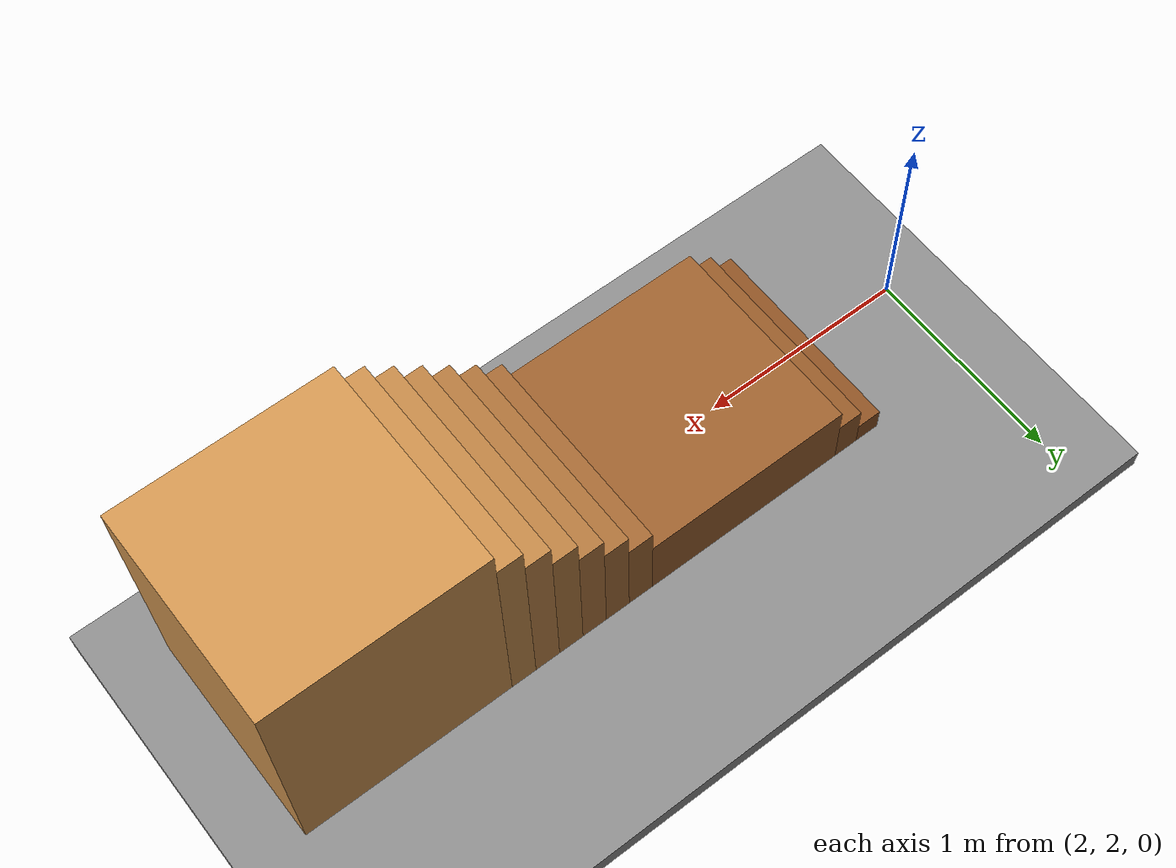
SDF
<?xml version="1.0" ?>
<sdf version="1.9">
  <world name="stairs">
    <physics name="default_physics" type="ignored">
      <max_step_size>0.001</max_step_size>
      <real_time_factor>1.0</real_time_factor>
    </physics>

    <plugin filename="gz-sim-physics-system" name="gz::sim::systems::Physics"/>
    <plugin filename="gz-sim-user-commands-system" name="gz::sim::systems::UserCommands"/>
    <plugin filename="gz-sim-scene-broadcaster-system" name="gz::sim::systems::SceneBroadcaster"/>
    <plugin filename="gz-sim-sensors-system" name="gz::sim::systems::Sensors">
      <render_engine>ogre2</render_engine>
    </plugin>

    <scene>
      <ambient>0.45 0.45 0.45 1</ambient>
      <background>0.75 0.82 0.90 1</background>
      <shadows>true</shadows>
      <grid>true</grid>
    </scene>

    <light type="directional" name="sun">
      <cast_shadows>true</cast_shadows>
      <pose>0 0 10 0 0 0</pose>
      <diffuse>0.9 0.9 0.9 1</diffuse>
      <specular>0.2 0.2 0.2 1</specular>
      <direction>-0.4 0.2 -1</direction>
    </light>

    <model name="ground">
      <static>true</static>
      <pose>3.5 2 -0.05 0 0 0</pose>
      <link name="link">
        <collision name="collision">
          <geometry><box><size>10 6 0.1</size></box></geometry>
        </collision>
        <visual name="visual">
          <geometry><box><size>10 6 0.1</size></box></geometry>
          <material><diffuse>0.55 0.55 0.55 1</diffuse></material>
        </visual>
      </link>
    </model>

    <model name="stairs">
      <static>true</static>
      <pose>2.5 2 0 0 0 0</pose>
      <link name="link">
        <collision name="step_1_collision"><pose>0.06 0 0.06 0 0 0</pose><geometry><box><size>0.12 1 0.12</size></box></geometry></collision>
        <visual name="step_1_visual"><pose>0.06 0 0.06 0 0 0</pose><geometry><box><size>0.12 1 0.12</size></box></geometry><material><diffuse>0.55 0.32 0.14 1</diffuse></material></visual>

        <collision name="step_2_collision"><pose>0.18 0 0.12 0 0 0</pose><geometry><box><size>0.12 1 0.24</size></box></geometry></collision>
        <visual name="step_2_visual"><pose>0.18 0 0.12 0 0 0</pose><geometry><box><size>0.12 1 0.24</size></box></geometry><material><diffuse>0.58 0.35 0.16 1</diffuse></material></visual>

        <collision name="step_3_landing_collision"><pose>0.74 0 0.18 0 0 0</pose><geometry><box><size>1 1 0.36</size></box></geometry></collision>
        <visual name="step_3_landing_visual"><pose>0.74 0 0.18 0 0 0</pose><geometry><box><size>1 1 0.36</size></box></geometry><material><diffuse>0.61 0.38 0.18 1</diffuse></material></visual>

        <collision name="step_4_collision"><pose>1.30 0 0.24 0 0 0</pose><geometry><box><size>0.12 1 0.48</size></box></geometry></collision>
        <visual name="step_4_visual"><pose>1.30 0 0.24 0 0 0</pose><geometry><box><size>0.12 1 0.48</size></box></geometry><material><diffuse>0.64 0.41 0.20 1</diffuse></material></visual>

        <collision name="step_5_collision"><pose>1.42 0 0.30 0 0 0</pose><geometry><box><size>0.12 1 0.60</size></box></geometry></collision>
        <visual name="step_5_visual"><pose>1.42 0 0.30 0 0 0</pose><geometry><box><size>0.12 1 0.60</size></box></geometry><material><diffuse>0.67 0.44 0.22 1</diffuse></material></visual>

        <collision name="step_6_collision"><pose>1.54 0 0.36 0 0 0</pose><geometry><box><size>0.12 1 0.72</size></box></geometry></collision>
        <visual name="step_6_visual"><pose>1.54 0 0.36 0 0 0</pose><geometry><box><size>0.12 1 0.72</size></box></geometry><material><diffuse>0.70 0.47 0.24 1</diffuse></material></visual>

        <collision name="step_7_collision"><pose>1.66 0 0.42 0 0 0</pose><geometry><box><size>0.12 1 0.84</size></box></geometry></collision>
        <visual name="step_7_visual"><pose>1.66 0 0.42 0 0 0</pose><geometry><box><size>0.12 1 0.84</size></box></geometry><material><diffuse>0.73 0.50 0.26 1</diffuse></material></visual>

        <collision name="step_8_collision"><pose>1.78 0 0.48 0 0 0</pose><geometry><box><size>0.12 1 0.96</size></box></geometry></collision>
        <visual name="step_8_visual"><pose>1.78 0 0.48 0 0 0</pose><geometry><box><size>0.12 1 0.96</size></box></geometry><material><diffuse>0.76 0.53 0.28 1</diffuse></material></visual>

        <collision name="step_9_collision"><pose>1.90 0 0.54 0 0 0</pose><geometry><box><size>0.12 1 1.08</size></box></geometry></collision>
        <visual name="step_9_visual"><pose>1.90 0 0.54 0 0 0</pose><geometry><box><size>0.12 1 1.08</size></box></geometry><material><diffuse>0.79 0.56 0.30 1</diffuse></material></visual>

        <collision name="step_10_landing_collision"><pose>2.46 0 0.60 0 0 0</pose><geometry><box><size>1 1 1.20</size></box></geometry></collision>
        <visual name="step_10_landing_visual"><pose>2.46 0 0.60 0 0 0</pose><geometry><box><size>1 1 1.20</size></box></geometry><material><diffuse>0.82 0.59 0.32 1</diffuse></material></visual>
      </link>
    </model>
  </world>
</sdf>
